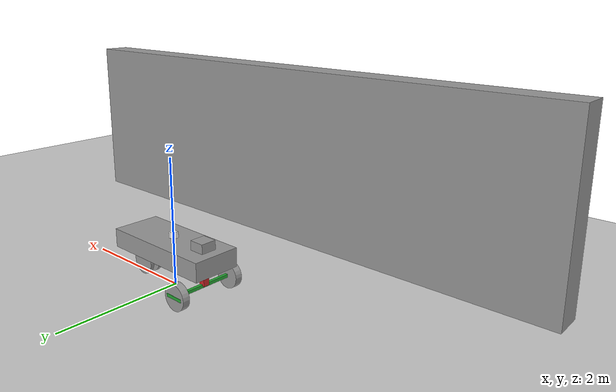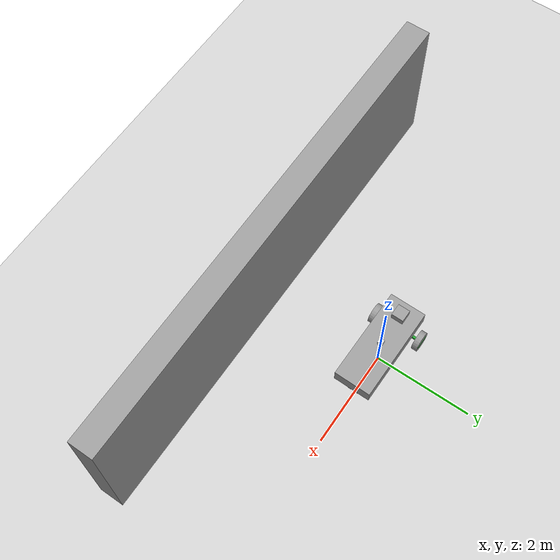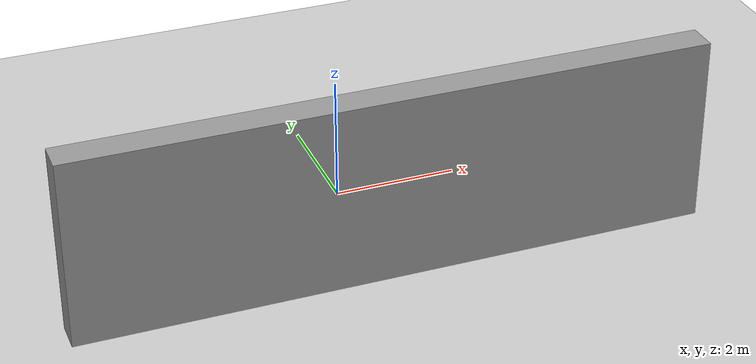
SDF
<sdf version="1.6">
 <world name="default">
  <model name="ground_plane">
   <static>1</static>
   <link name="link">
    <collision name="collision">
     <geometry><plane><normal>0 0 1</normal><size>100 100</size></plane></geometry>
     <surface><friction><ode><mu>100</mu><mu2>50</mu2></ode></friction></surface>
    </collision>
    <visual name="visual">
     <cast_shadows>0</cast_shadows>
     <geometry><plane><normal>0 0 1</normal><size>100 100</size></plane></geometry>
     <material>
      <script><uri>file://media/materials/scripts/gazebo.material</uri><name>Gazebo/Grey</name></script>
     </material>
    </visual>
   </link>
  </model>
  <light name="sun" type="directional">
   <pose>0 0 10 0 -0 0</pose>
   <diffuse>0.8 0.8 0.8 1</diffuse>
   <specular>0.2 0.2 0.2 1</specular>
   <attenuation>
    <range>1000</range>
    <constant>0.9</constant>
    <linear>0.01</linear>
    <quadratic>0.001</quadratic>
   </attenuation>
   <direction>-0.5 0.1 -0.9</direction>
  </light>
  <gravity>0 0 -9.8</gravity>
  <magnetic_field>6e-06 2.3e-05 -4.2e-05</magnetic_field>
  <atmosphere type="adiabatic"/>
  <physics name="default_physics" default="0" type="ode">
   <max_step_size>0.001</max_step_size>
   <real_time_factor>1</real_time_factor>
   <real_time_update_rate>1000</real_time_update_rate>
  </physics>
  <scene><ambient>0.4 0.4 0.4 1</ambient><background>0.7 0.7 0.7 1</background><shadows>1</shadows></scene>
  <spherical_coordinates>
   <surface_model>EARTH_WGS84</surface_model>
   <latitude_deg>0</latitude_deg>
   <longitude_deg>0</longitude_deg>
   <elevation>0</elevation>
   <heading_deg>0</heading_deg>
  </spherical_coordinates>
  <model name="rrbot">
   <link name="base_link">
    <inertial>
     <pose>-0.279794 0 -0.149211 0 -0 0</pose>
     <mass>85</mass>
     <inertia>
      <ixx>5.4005</ixx>
      <ixy>0</ixy>
      <ixz>1.64962</ixz>
      <iyy>36.1465</iyy>
      <iyz>0</iyz>
      <izz>38.5473</izz>
     </inertia>
    </inertial>
    <collision name="base_link_collision"><geometry><box><size>0.1 0.1 0.1</size></box></geometry></collision>
    <collision name="base_link_fixed_joint_lump__car_body_collision_1">
     <pose>0 0 -0.197765 0 -0 0</pose>
     <geometry><box><size>1.94 0.76 0.29553</size></box></geometry>
    </collision>
    <collision name="base_link_fixed_joint_lump__motor_link_collision_2">
     <pose>-0.6795 0 -0.027235 0 -0 0</pose>
     <geometry><box><size>0.25 0.25 0.25</size></box></geometry>
    </collision>
    <collision name="base_link_fixed_joint_lump__rear_link_collision_3">
     <pose>-0.6795 0 -0.472765 0 -0 0</pose>
     <geometry><box><size>0.1 0.1 0.25447</size></box></geometry>
    </collision>
    <visual name="base_link_visual">
     <geometry><box><size>0.1 0.1 0.1</size></box></geometry>
     <material>
      <script><name>Gazebo/White</name><uri>file://media/materials/scripts/gazebo.material</uri></script>
     </material>
    </visual>
    <visual name="base_link_fixed_joint_lump__car_body_visual_1">
     <pose>0 0 -0.197765 0 -0 0</pose>
     <geometry><box><size>1.94 0.76 0.29553</size></box></geometry>
     <material>
      <script><name>Gazebo/Grey</name><uri>file://media/materials/scripts/gazebo.material</uri></script>
     </material>
    </visual>
    <visual name="base_link_fixed_joint_lump__motor_link_visual_2">
     <pose>-0.6795 0 -0.027235 0 -0 0</pose>
     <geometry><box><size>0.25 0.25 0.25</size></box></geometry>
     <material>
      <script><name>Gazebo/Grey</name><uri>file://media/materials/scripts/gazebo.material</uri></script>
     </material>
    </visual>
    <visual name="base_link_fixed_joint_lump__rear_link_visual_3">
     <pose>-0.6795 0 -0.472765 0 -0 0</pose>
     <geometry><box><size>0.1 0.1 0.25447</size></box></geometry>
     <material>
      <script><name>Gazebo/Red</name><uri>file://media/materials/scripts/gazebo.material</uri></script>
     </material>
    </visual>
   </link>
   <link name="front_link">
    <pose>0.6795 0 -0.34553 0 -0 0</pose>
    <inertial>
     <pose>0 0 0.127235 0 -0 0</pose>
     <mass>5</mass>
     <inertia><ixx>0.1</ixx><ixy>0</ixy><ixz>0</ixz><iyy>0.1</iyy><iyz>0</iyz><izz>0.1</izz></inertia>
    </inertial>
    <collision name="front_link_collision">
     <pose>0 0 0.127235 0 -0 0</pose>
     <geometry><box><size>0.1 0.1 0.25447</size></box></geometry>
    </collision>
    <visual name="front_link_visual">
     <pose>0 0 -0.127235 0 -0 0</pose>
     <geometry><box><size>0.1 0.1 0.25447</size></box></geometry>
     <material>
      <script><name>Gazebo/Red</name><uri>file://media/materials/scripts/gazebo.material</uri></script>
     </material>
    </visual>
   </link>
   <joint name="front_joint" type="revolute">
    <child>front_link</child>
    <parent>base_link</parent>
    <axis>
     <xyz>0 0 1</xyz>
     <limit><lower>-0.785398</lower><upper>0.785398</upper><effort>100</effort><velocity>2</velocity></limit>
     <dynamics>
      <damping>0.7</damping>
      <friction>0</friction>
      <spring_reference>0</spring_reference>
      <spring_stiffness>0</spring_stiffness>
     </dynamics>
     <use_parent_model_frame>1</use_parent_model_frame>
    </axis>
   </joint>
   <link name="front_axel_link">
    <pose>0.6795 0 -0.6 0 -0 0</pose>
    <inertial>
     <mass>7</mass>
     <inertia><ixx>0.0425484</ixx><ixy>0</ixy><ixz>0</ixz><iyy>0.03</iyy><iyz>0</iyz><izz>0.0425484</izz></inertia>
    </inertial>
    <collision name="front_axel_link_collision">
     <geometry><box><size>0.05 0.1 0.05</size></box></geometry>
    </collision>
    <collision name="front_axel_link_fixed_joint_lump__front_left_wheel_link_collision_1">
     <pose>0 -0.07921 0 1.5708 -0 0</pose>
     <geometry><cylinder><length>0.05842</length><radius>0.20447</radius></cylinder></geometry>
    </collision>
    <collision name="front_axel_link_fixed_joint_lump__front_right_wheel_link_collision_2">
     <pose>0 0.07921 0 1.5708 -0 0</pose>
     <geometry><cylinder><length>0.05842</length><radius>0.20447</radius></cylinder></geometry>
    </collision>
    <visual name="front_axel_link_visual">
     <geometry><box><size>0.05 0.1 0.05</size></box></geometry>
     <material>
      <script><name>Gazebo/Green</name><uri>file://media/materials/scripts/gazebo.material</uri></script>
     </material>
    </visual>
    <visual name="front_axel_link_fixed_joint_lump__front_left_wheel_link_visual_1">
     <pose>0 -0.07921 0 1.5708 -0 0</pose>
     <geometry><cylinder><length>0.05842</length><radius>0.20447</radius></cylinder></geometry>
     <material>
      <script><name>Gazebo/Grey</name><uri>file://media/materials/scripts/gazebo.material</uri></script>
     </material>
    </visual>
    <visual name="front_axel_link_fixed_joint_lump__front_right_wheel_link_visual_2">
     <pose>0 0.07921 0 1.5708 -0 0</pose>
     <geometry><cylinder><length>0.05842</length><radius>0.20447</radius></cylinder></geometry>
     <material>
      <script><name>Gazebo/Grey</name><uri>file://media/materials/scripts/gazebo.material</uri></script>
     </material>
    </visual>
   </link>
   <joint name="front_axel_joint" type="revolute">
    <child>front_axel_link</child>
    <parent>front_link</parent>
    <axis>
     <xyz>0 1 0</xyz>
     <limit><lower>-1e+16</lower><upper>1e+16</upper></limit>
     <dynamics>
      <damping>0.1</damping>
      <friction>0</friction>
      <spring_reference>0</spring_reference>
      <spring_stiffness>0</spring_stiffness>
     </dynamics>
     <use_parent_model_frame>1</use_parent_model_frame>
    </axis>
   </joint>
   <link name="rear_axel_link">
    <pose>-0.6795 0 -0.6 0 -0 0</pose>
    <inertial>
     <pose>0 0.087678 0 0 -0 0</pose>
     <mass>8.5</mass>
     <inertia><ixx>0.828632</ixx><ixy>0</ixy><ixz>0</ixz><iyy>0.03</iyy><iyz>0</iyz><izz>0.828632</izz></inertia>
    </inertial>
    <collision name="rear_axel_link_collision">
     <geometry><box><size>0.05 0.87684 0.05</size></box></geometry>
    </collision>
    <collision name="rear_axel_link_fixed_joint_lump__rear_left_wheel_link_collision_1">
     <pose>0 -0.49684 0 1.5708 -0 0</pose>
     <geometry><cylinder><length>0.11684</length><radius>0.20447</radius></cylinder></geometry>
    </collision>
    <collision name="rear_axel_link_fixed_joint_lump__left_spin_link_collision_2">
     <pose>0 -0.55526 0 0 -0 0</pose>
     <geometry><box><size>0.306705 0.01 0.05</size></box></geometry>
    </collision>
    <collision name="rear_axel_link_fixed_joint_lump__rear_right_wheel_link_collision_3">
     <pose>0 0.49684 0 1.5708 -0 0</pose>
     <geometry><cylinder><length>0.11684</length><radius>0.20447</radius></cylinder></geometry>
    </collision>
    <collision name="rear_axel_link_fixed_joint_lump__right_spin_link_collision_4">
     <pose>0 0.55526 0 0 -0 0</pose>
     <geometry><box><size>0.306705 0.01 0.05</size></box></geometry>
    </collision>
    <visual name="rear_axel_link_visual">
     <geometry><box><size>0.05 0.87684 0.05</size></box></geometry>
     <material>
      <script><name>Gazebo/Green</name><uri>file://media/materials/scripts/gazebo.material</uri></script>
     </material>
    </visual>
    <visual name="rear_axel_link_fixed_joint_lump__rear_left_wheel_link_visual_1">
     <pose>0 -0.49684 0 1.5708 -0 0</pose>
     <geometry><cylinder><length>0.11684</length><radius>0.20447</radius></cylinder></geometry>
     <material>
      <script><name>Gazebo/Grey</name><uri>file://media/materials/scripts/gazebo.material</uri></script>
     </material>
    </visual>
    <visual name="rear_axel_link_fixed_joint_lump__left_spin_link_visual_2">
     <pose>0 -0.55526 0 0 -0 0</pose>
     <geometry><box><size>0.306705 0.01 0.05</size></box></geometry>
     <material>
      <script><name>Gazebo/Red</name><uri>file://media/materials/scripts/gazebo.material</uri></script>
     </material>
    </visual>
    <visual name="rear_axel_link_fixed_joint_lump__rear_right_wheel_link_visual_3">
     <pose>0 0.49684 0 1.5708 -0 0</pose>
     <geometry><cylinder><length>0.11684</length><radius>0.20447</radius></cylinder></geometry>
     <material>
      <script><name>Gazebo/Grey</name><uri>file://media/materials/scripts/gazebo.material</uri></script>
     </material>
    </visual>
    <visual name="rear_axel_link_fixed_joint_lump__right_spin_link_visual_4">
     <pose>0 0.55526 0 0 -0 0</pose>
     <geometry><box><size>0.306705 0.01 0.05</size></box></geometry>
     <material>
      <script><name>Gazebo/Green</name><uri>file://media/materials/scripts/gazebo.material</uri></script>
     </material>
    </visual>
   </link>
   <joint name="rear_axel_joint" type="revolute">
    <child>rear_axel_link</child>
    <parent>base_link</parent>
    <axis>
     <xyz>0 1 0</xyz>
     <limit><lower>-1e+16</lower><upper>1e+16</upper></limit>
     <dynamics>
      <damping>5</damping>
      <friction>0</friction>
      <spring_reference>0</spring_reference>
      <spring_stiffness>0</spring_stiffness>
     </dynamics>
     <use_parent_model_frame>1</use_parent_model_frame>
    </axis>
   </joint>
   <static>0</static>
   <plugin name="gazebo_ros_control" filename="libgazebo_ros_control.so">
    <robotNamespace>/car_test</robotNamespace>
    <robotSimType>gazebo_ros_control/DefaultRobotHWSim</robotSimType>
   </plugin>
   <pose>0.007627 -0.003718 0.80447 4e-06 -3e-06 -0.009225</pose>
  </model>
  <model name="unit_box">
   <pose>0.018483 -2.5058 1.6109 0 -0 0.000604</pose>
   <link name="link">
    <inertial>
     <mass>1</mass>
     <inertia>
      <ixx>0.166667</ixx>
      <ixy>0</ixy>
      <ixz>0</ixz>
      <iyy>0.166667</iyy>
      <iyz>0</iyz>
      <izz>0.166667</izz>
     </inertia>
    </inertial>
    <collision name="collision"><geometry><box><size>10 0.5 3</size></box></geometry></collision>
    <visual name="visual">
     <geometry><box><size>10 0.5 3</size></box></geometry>
     <material>
      <script><name>Gazebo/Grey</name><uri>file://media/materials/scripts/gazebo.material</uri></script>
     </material>
    </visual>
   </link>
  </model>
 </world>
</sdf>
